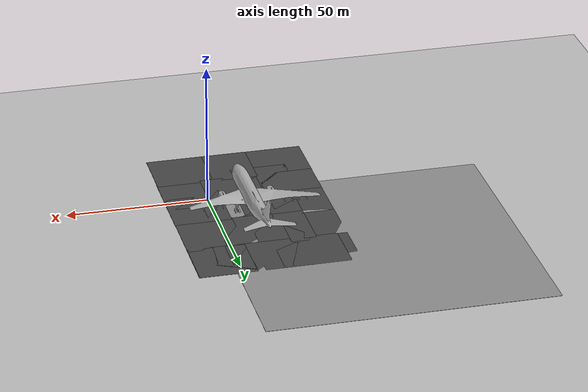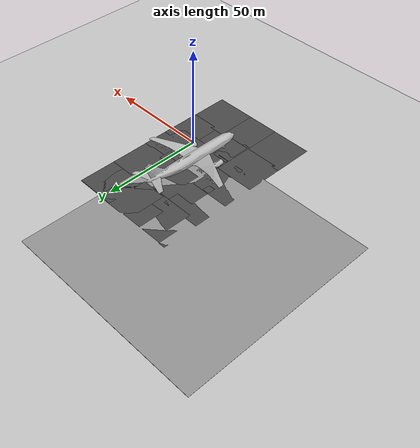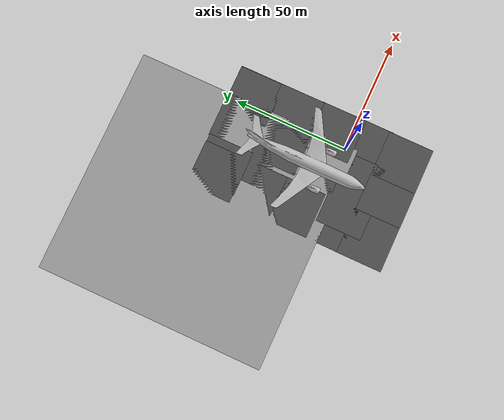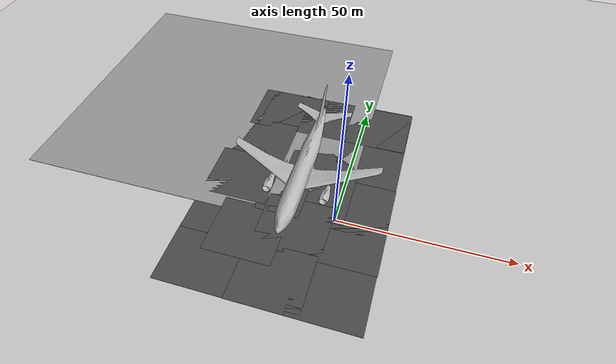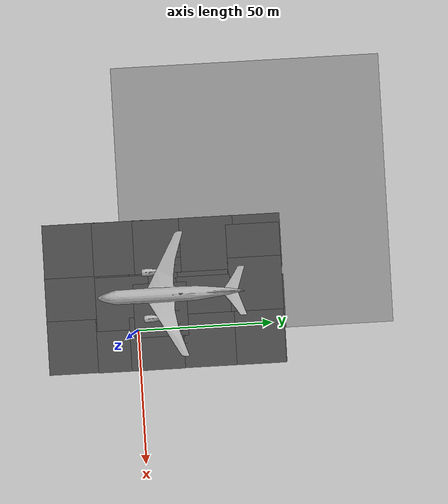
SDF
<sdf version="1.4">
 <world name="default">
  <model name="ground_plane">
   <static>1</static>
   <link name="link">
    <collision name="collision">
     <geometry><plane><normal>0 0 1</normal><size>2000 2000</size></plane></geometry>
     <surface><friction><ode><mu>100</mu><mu2>50</mu2></ode></friction></surface>
    </collision>
    <visual name="visual">
     <cast_shadows>0</cast_shadows>
     <geometry><plane><normal>0 0 1</normal><size>2000 2000</size></plane></geometry>
     <material>
      <script><uri>file://media/materials/scripts/gazebo.material</uri><name>Gazebo/Grey</name></script>
     </material>
    </visual>
    <velocity_decay><linear>0</linear><angular>0</angular></velocity_decay>
   </link>
  </model>
  <light name="sun" type="directional">
   <pose>0 0 10 0 -0 0</pose>
   <diffuse>0.8 0.8 0.8 1</diffuse>
   <specular>0.2 0.2 0.2 1</specular>
   <attenuation>
    <range>1000</range>
    <constant>0.9</constant>
    <linear>0.01</linear>
    <quadratic>0.001</quadratic>
   </attenuation>
   <direction>-0.5 0.1 -0.9</direction>
  </light>
  <model name="aircraft">
   <link name="link">
    <collision name="collision">
     <pose>-11.5 3 0 0 0 -0.785</pose>
     <geometry><mesh><uri>model://aircraft/airbus.dae</uri><scale>0.05 0.05 0.05</scale></mesh></geometry>
    </collision>
    <visual name="visual">
     <pose>-11.5 3 0 0 0 -0.785</pose>
     <geometry><mesh><uri>model://aircraft/airbus.dae</uri><scale>0.05 0.05 0.05</scale></mesh></geometry>
    </visual>
    <velocity_decay><linear>0</linear><angular>0</angular></velocity_decay>
   </link>
   <pose>-11.5 3 0 0 0 -0.785</pose>
   <static>1</static>
  </model>
  <physics type="ode">
   <ode>
    <solver><type>quick</type><iters>1000</iters><sor>1.3</sor></solver>
    <constraints>
     <cfm>0</cfm>
     <erp>0.2</erp>
     <contact_max_correcting_vel>100</contact_max_correcting_vel>
     <contact_surface_layer>0.001</contact_surface_layer>
    </constraints>
   </ode>
   <max_step_size>0.005</max_step_size>
   <real_time_factor>1</real_time_factor>
   <real_time_update_rate>200</real_time_update_rate>
   <gravity>0 0 -9.8</gravity>
  </physics>
  <scene><ambient>0.4 0.4 0.4 1</ambient><background>0.7 0.7 0.7 1</background><shadows>1</shadows></scene>
  <spherical_coordinates>
   <surface_model>EARTH_WGS84</surface_model>
   <latitude_deg>0</latitude_deg>
   <longitude_deg>0</longitude_deg>
   <elevation>0</elevation>
   <heading_deg>0</heading_deg>
  </spherical_coordinates>
  <model name="asphalt_plane">
   <static>1</static>
   <link name="link">
    <collision name="collision"><geometry><box><size>20 20 0.1</size></box></geometry></collision>
    <visual name="visual">
     <cast_shadows>0</cast_shadows>
     <geometry><box><size>20 20 0.1</size></box></geometry>
     <material>
      <script>
       <uri>model://asphalt_plane/materials/scripts</uri>
       <uri>model://asphalt_plane/materials/textures</uri>
       <name>vrc/asphalt</name>
      </script>
     </material>
    </visual>
    <velocity_decay><linear>0</linear><angular>0</angular></velocity_decay>
   </link>
   <pose>-7.14154 8.70438 0 0 -0 0</pose>
  </model>
  <model name="asphalt_plane_0">
   <static>1</static>
   <link name="link">
    <collision name="collision"><geometry><box><size>20 20 0.1</size></box></geometry></collision>
    <visual name="visual">
     <cast_shadows>0</cast_shadows>
     <geometry><box><size>20 20 0.1</size></box></geometry>
     <material>
      <script>
       <uri>model://asphalt_plane/materials/scripts</uri>
       <uri>model://asphalt_plane/materials/textures</uri>
       <name>vrc/asphalt</name>
      </script>
     </material>
    </visual>
    <velocity_decay><linear>0</linear><angular>0</angular></velocity_decay>
   </link>
   <pose>5.12659 6.74102 0 0 -0 0</pose>
  </model>
  <model name="asphalt_plane_1">
   <static>1</static>
   <link name="link">
    <collision name="collision"><geometry><box><size>20 20 0.1</size></box></geometry></collision>
    <visual name="visual">
     <cast_shadows>0</cast_shadows>
     <geometry><box><size>20 20 0.1</size></box></geometry>
     <material>
      <script>
       <uri>model://asphalt_plane/materials/scripts</uri>
       <uri>model://asphalt_plane/materials/textures</uri>
       <name>vrc/asphalt</name>
      </script>
     </material>
    </visual>
    <velocity_decay><linear>0</linear><angular>0</angular></velocity_decay>
   </link>
   <pose>-10.3459 -5.37744 0 0 -0 0</pose>
  </model>
  <model name="asphalt_plane_2">
   <static>1</static>
   <link name="link">
    <collision name="collision"><geometry><box><size>20 20 0.1</size></box></geometry></collision>
    <visual name="visual">
     <cast_shadows>0</cast_shadows>
     <geometry><box><size>20 20 0.1</size></box></geometry>
     <material>
      <script>
       <uri>model://asphalt_plane/materials/scripts</uri>
       <uri>model://asphalt_plane/materials/textures</uri>
       <name>vrc/asphalt</name>
      </script>
     </material>
    </visual>
    <velocity_decay><linear>0</linear><angular>0</angular></velocity_decay>
   </link>
   <pose>5.15197 -5.71199 0 0 -0 0</pose>
  </model>
  <model name="asphalt_plane_3">
   <static>1</static>
   <link name="link">
    <collision name="collision"><geometry><box><size>20 20 0.1</size></box></geometry></collision>
    <visual name="visual">
     <cast_shadows>0</cast_shadows>
     <geometry><box><size>20 20 0.1</size></box></geometry>
     <material>
      <script>
       <uri>model://asphalt_plane/materials/scripts</uri>
       <uri>model://asphalt_plane/materials/textures</uri>
       <name>vrc/asphalt</name>
      </script>
     </material>
    </visual>
    <velocity_decay><linear>0</linear><angular>0</angular></velocity_decay>
   </link>
   <pose>5 26 0 0 -0 0</pose>
  </model>
  <model name="asphalt_plane_4">
   <static>1</static>
   <link name="link">
    <collision name="collision"><geometry><box><size>20 20 0.1</size></box></geometry></collision>
    <visual name="visual">
     <cast_shadows>0</cast_shadows>
     <geometry><box><size>20 20 0.1</size></box></geometry>
     <material>
      <script>
       <uri>model://asphalt_plane/materials/scripts</uri>
       <uri>model://asphalt_plane/materials/textures</uri>
       <name>vrc/asphalt</name>
      </script>
     </material>
    </visual>
    <velocity_decay><linear>0</linear><angular>0</angular></velocity_decay>
   </link>
   <pose>-9 25 0 0 -0 0</pose>
  </model>
  <model name="asphalt_plane_5">
   <static>1</static>
   <link name="link">
    <collision name="collision"><geometry><box><size>20 20 0.1</size></box></geometry></collision>
    <visual name="visual">
     <cast_shadows>0</cast_shadows>
     <geometry><box><size>20 20 0.1</size></box></geometry>
     <material>
      <script>
       <uri>model://asphalt_plane/materials/scripts</uri>
       <uri>model://asphalt_plane/materials/textures</uri>
       <name>vrc/asphalt</name>
      </script>
     </material>
    </visual>
    <velocity_decay><linear>0</linear><angular>0</angular></velocity_decay>
   </link>
   <pose>5 44.4919 0 0 -0 0</pose>
  </model>
  <model name="asphalt_plane_6">
   <static>1</static>
   <link name="link">
    <collision name="collision"><geometry><box><size>20 20 0.1</size></box></geometry></collision>
    <visual name="visual">
     <cast_shadows>0</cast_shadows>
     <geometry><box><size>20 20 0.1</size></box></geometry>
     <material>
      <script>
       <uri>model://asphalt_plane/materials/scripts</uri>
       <uri>model://asphalt_plane/materials/textures</uri>
       <name>vrc/asphalt</name>
      </script>
     </material>
    </visual>
    <velocity_decay><linear>0</linear><angular>0</angular></velocity_decay>
   </link>
   <pose>-15 44.564 0 0 -0 0</pose>
  </model>
  <model name="asphalt_plane_7">
   <static>1</static>
   <link name="link">
    <collision name="collision"><geometry><box><size>20 20 0.1</size></box></geometry></collision>
    <visual name="visual">
     <cast_shadows>0</cast_shadows>
     <geometry><box><size>20 20 0.1</size></box></geometry>
     <material>
      <script>
       <uri>model://asphalt_plane/materials/scripts</uri>
       <uri>model://asphalt_plane/materials/textures</uri>
       <name>vrc/asphalt</name>
      </script>
     </material>
    </visual>
    <velocity_decay><linear>0</linear><angular>0</angular></velocity_decay>
   </link>
   <pose>-27.4301 44.5209 0 0 -0 0</pose>
  </model>
  <model name="asphalt_plane_8">
   <static>1</static>
   <link name="link">
    <collision name="collision"><geometry><box><size>20 20 0.1</size></box></geometry></collision>
    <visual name="visual">
     <cast_shadows>0</cast_shadows>
     <geometry><box><size>20 20 0.1</size></box></geometry>
     <material>
      <script>
       <uri>model://asphalt_plane/materials/scripts</uri>
       <uri>model://asphalt_plane/materials/textures</uri>
       <name>vrc/asphalt</name>
      </script>
     </material>
    </visual>
    <velocity_decay><linear>0</linear><angular>0</angular></velocity_decay>
   </link>
   <pose>-30.8399 27.1728 0 0 -0 0</pose>
  </model>
  <model name="asphalt_plane_9">
   <static>1</static>
   <link name="link">
    <collision name="collision"><geometry><box><size>20 20 0.1</size></box></geometry></collision>
    <visual name="visual">
     <cast_shadows>0</cast_shadows>
     <geometry><box><size>20 20 0.1</size></box></geometry>
     <material>
      <script>
       <uri>model://asphalt_plane/materials/scripts</uri>
       <uri>model://asphalt_plane/materials/textures</uri>
       <name>vrc/asphalt</name>
      </script>
     </material>
    </visual>
    <velocity_decay><linear>0</linear><angular>0</angular></velocity_decay>
   </link>
   <pose>-30.8026 9.74822 0 0 -0 0</pose>
  </model>
  <model name="asphalt_plane_10">
   <static>1</static>
   <link name="link">
    <collision name="collision"><geometry><box><size>20 20 0.1</size></box></geometry></collision>
    <visual name="visual">
     <cast_shadows>0</cast_shadows>
     <geometry><box><size>20 20 0.1</size></box></geometry>
     <material>
      <script>
       <uri>model://asphalt_plane/materials/scripts</uri>
       <uri>model://asphalt_plane/materials/textures</uri>
       <name>vrc/asphalt</name>
      </script>
     </material>
    </visual>
    <velocity_decay><linear>0</linear><angular>0</angular></velocity_decay>
   </link>
   <pose>-30.8734 -5.45273 0 0 -0 0</pose>
  </model>
  <model name="asphalt_plane_15">
   <static>1</static>
   <link name="link">
    <collision name="collision"><geometry><box><size>20 20 0.1</size></box></geometry></collision>
    <visual name="visual">
     <cast_shadows>0</cast_shadows>
     <geometry><box><size>20 20 0.1</size></box></geometry>
     <material>
      <script>
       <uri>model://asphalt_plane/materials/scripts</uri>
       <uri>model://asphalt_plane/materials/textures</uri>
       <name>vrc/asphalt</name>
      </script>
     </material>
    </visual>
    <velocity_decay><linear>0</linear><angular>0</angular></velocity_decay>
   </link>
   <pose>-30.8097 44.8258 0 0 -0 0</pose>
  </model>
  <model name="asphalt_plane_16">
   <static>1</static>
   <link name="link">
    <collision name="collision"><geometry><box><size>20 20 0.1</size></box></geometry></collision>
    <visual name="visual">
     <cast_shadows>0</cast_shadows>
     <geometry><box><size>20 20 0.1</size></box></geometry>
     <material>
      <script>
       <uri>model://asphalt_plane/materials/scripts</uri>
       <uri>model://asphalt_plane/materials/textures</uri>
       <name>vrc/asphalt</name>
      </script>
     </material>
    </visual>
    <velocity_decay><linear>0</linear><angular>0</angular></velocity_decay>
   </link>
   <pose>-24.3343 44.4732 0 0 -0 0</pose>
  </model>
  <model name="asphalt_plane_17">
   <static>1</static>
   <link name="link">
    <collision name="collision"><geometry><box><size>20 20 0.1</size></box></geometry></collision>
    <visual name="visual">
     <cast_shadows>0</cast_shadows>
     <geometry><box><size>20 20 0.1</size></box></geometry>
     <material>
      <script>
       <uri>model://asphalt_plane/materials/scripts</uri>
       <uri>model://asphalt_plane/materials/textures</uri>
       <name>vrc/asphalt</name>
      </script>
     </material>
    </visual>
    <velocity_decay><linear>0</linear><angular>0</angular></velocity_decay>
   </link>
   <pose>-8.06049 45.0155 0 0 -0 0</pose>
  </model>
  <model name="asphalt_plane_18">
   <static>1</static>
   <link name="link">
    <collision name="collision"><geometry><box><size>20 20 0.1</size></box></geometry></collision>
    <visual name="visual">
     <cast_shadows>0</cast_shadows>
     <geometry><box><size>20 20 0.1</size></box></geometry>
     <material>
      <script>
       <uri>model://asphalt_plane/materials/scripts</uri>
       <uri>model://asphalt_plane/materials/textures</uri>
       <name>vrc/asphalt</name>
      </script>
     </material>
    </visual>
    <velocity_decay><linear>0</linear><angular>0</angular></velocity_decay>
   </link>
   <pose>4.8551 44.6862 0 0 -0 0</pose>
  </model>
  <model name="asphalt_plane_19">
   <static>1</static>
   <link name="link">
    <collision name="collision"><geometry><box><size>20 20 0.1</size></box></geometry></collision>
    <visual name="visual">
     <cast_shadows>0</cast_shadows>
     <geometry><box><size>20 20 0.1</size></box></geometry>
     <material>
      <script>
       <uri>model://asphalt_plane/materials/scripts</uri>
       <uri>model://asphalt_plane/materials/textures</uri>
       <name>vrc/asphalt</name>
      </script>
     </material>
    </visual>
    <velocity_decay><linear>0</linear><angular>0</angular></velocity_decay>
   </link>
   <pose>5 -24 0 0 -0 0</pose>
  </model>
  <model name="asphalt_plane_20">
   <static>1</static>
   <link name="link">
    <collision name="collision"><geometry><box><size>20 20 0.1</size></box></geometry></collision>
    <visual name="visual">
     <cast_shadows>0</cast_shadows>
     <geometry><box><size>20 20 0.1</size></box></geometry>
     <material>
      <script>
       <uri>model://asphalt_plane/materials/scripts</uri>
       <uri>model://asphalt_plane/materials/textures</uri>
       <name>vrc/asphalt</name>
      </script>
     </material>
    </visual>
    <velocity_decay><linear>0</linear><angular>0</angular></velocity_decay>
   </link>
   <pose>-11 -24 0 0 -0 0</pose>
  </model>
  <model name="asphalt_plane_21">
   <static>1</static>
   <link name="link">
    <collision name="collision"><geometry><box><size>20 20 0.1</size></box></geometry></collision>
    <visual name="visual">
     <cast_shadows>0</cast_shadows>
     <geometry><box><size>20 20 0.1</size></box></geometry>
     <material>
      <script>
       <uri>model://asphalt_plane/materials/scripts</uri>
       <uri>model://asphalt_plane/materials/textures</uri>
       <name>vrc/asphalt</name>
      </script>
     </material>
    </visual>
    <velocity_decay><linear>0</linear><angular>0</angular></velocity_decay>
   </link>
   <pose>-30.9493 -23.9333 0 0 -0 0</pose>
  </model>
  <model name="asphalt_plane_23">
   <static>1</static>
   <link name="link">
    <collision name="collision"><geometry><box><size>20 20 0.1</size></box></geometry></collision>
    <visual name="visual">
     <cast_shadows>0</cast_shadows>
     <geometry><box><size>20 20 0.1</size></box></geometry>
     <material>
      <script>
       <uri>model://asphalt_plane/materials/scripts</uri>
       <uri>model://asphalt_plane/materials/textures</uri>
       <name>vrc/asphalt</name>
      </script>
     </material>
    </visual>
    <velocity_decay><linear>0</linear><angular>0</angular></velocity_decay>
   </link>
   <pose>-20 25.5249 0 0 -0 0</pose>
  </model>
  <model name="asphalt_plane_24">
   <static>1</static>
   <link name="link">
    <collision name="collision"><geometry><box><size>20 20 0.1</size></box></geometry></collision>
    <visual name="visual">
     <cast_shadows>0</cast_shadows>
     <geometry><box><size>20 20 0.1</size></box></geometry>
     <material>
      <script>
       <uri>model://asphalt_plane/materials/scripts</uri>
       <uri>model://asphalt_plane/materials/textures</uri>
       <name>vrc/asphalt</name>
      </script>
     </material>
    </visual>
    <velocity_decay><linear>0</linear><angular>0</angular></velocity_decay>
   </link>
   <pose>-20 7.59108 0 0 -0 0</pose>
  </model>
  <model name="asphalt_plane_25">
   <static>1</static>
   <link name="link">
    <collision name="collision"><geometry><box><size>20 20 0.1</size></box></geometry></collision>
    <visual name="visual">
     <cast_shadows>0</cast_shadows>
     <geometry><box><size>20 20 0.1</size></box></geometry>
     <material>
      <script>
       <uri>model://asphalt_plane/materials/scripts</uri>
       <uri>model://asphalt_plane/materials/textures</uri>
       <name>vrc/asphalt</name>
      </script>
     </material>
    </visual>
    <velocity_decay><linear>0</linear><angular>0</angular></velocity_decay>
   </link>
   <pose>-22.4799 -11 0 0 -0 0</pose>
  </model>
  <model name="ground_plane_0">
   <static>1</static>
   <link name="link">
    <collision name="collision">
     <geometry><plane><normal>0 0 1</normal><size>100 100</size></plane></geometry>
     <surface><friction><ode><mu>100</mu><mu2>50</mu2></ode></friction></surface>
    </collision>
    <visual name="visual">
     <cast_shadows>0</cast_shadows>
     <geometry><plane><normal>0 0 1</normal><size>100 100</size></plane></geometry>
     <material>
      <script><uri>file://media/materials/scripts/gazebo.material</uri><name>Gazebo/Grey</name></script>
     </material>
    </visual>
    <velocity_decay><linear>0</linear><angular>0</angular></velocity_decay>
   </link>
   <pose>-48 45 0 0 -0 0</pose>
  </model>
 </world>
</sdf>
